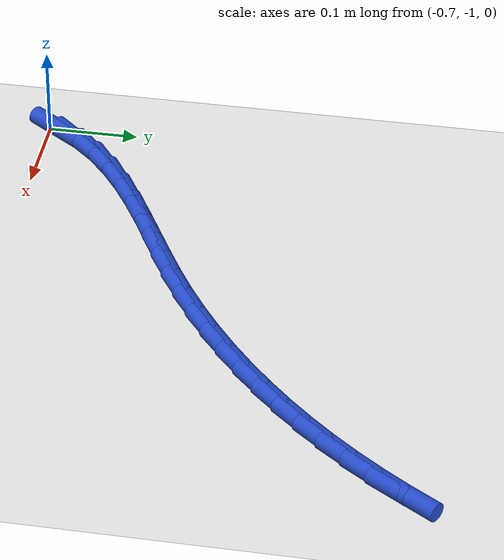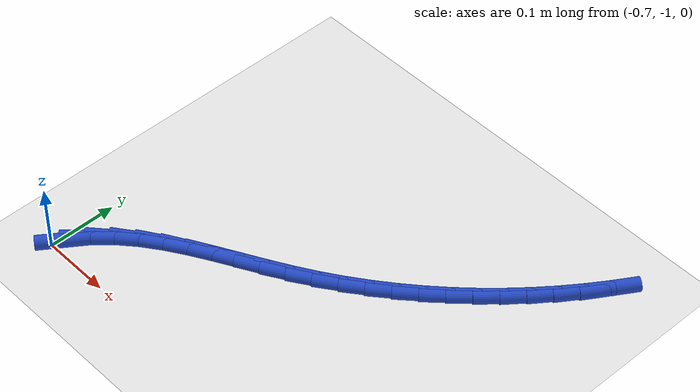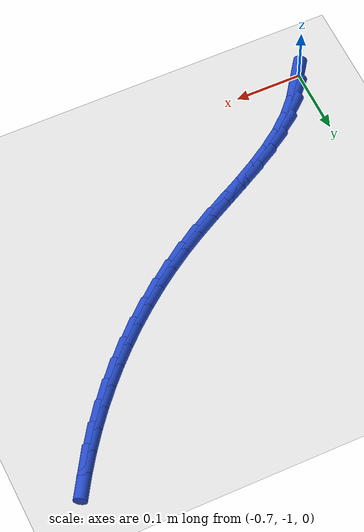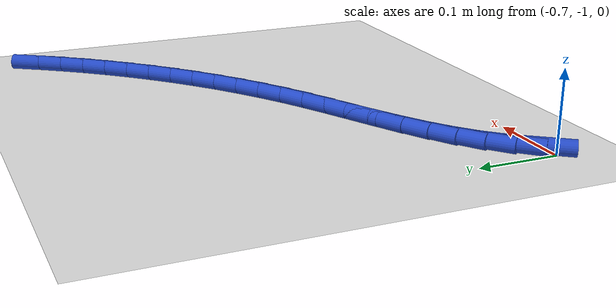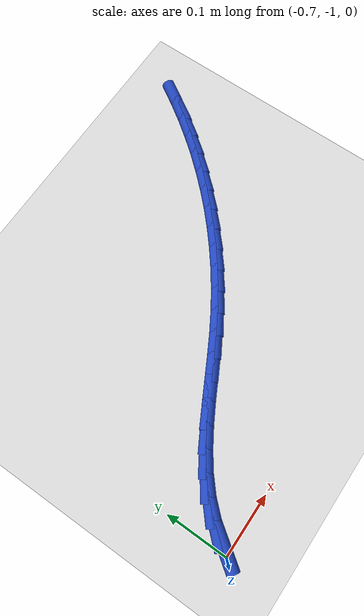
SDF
<sdf version="1.6">
 <world name="default">
  <model name="ground_plane">
   <static>1</static>
   <link name="link">
    <collision name="collision">
     <geometry><plane><normal>0 0 1</normal><size>100 100</size></plane></geometry>
     <surface><friction><ode><mu>100</mu><mu2>50</mu2></ode></friction></surface>
    </collision>
    <visual name="visual">
     <cast_shadows>0</cast_shadows>
     <geometry><plane><normal>0 0 1</normal><size>100 100</size></plane></geometry>
     <material>
      <script><uri>file://media/materials/scripts/gazebo.material</uri><name>Gazebo/WhiteGlow</name></script>
     </material>
    </visual>
   </link>
  </model>
  <model name="line">
   <link name="link_222">
    <pose>-0.6879303650324782 -0.9857824251509136 0.01 0 1.57 0.9573909140422552</pose>
    <collision name="collision">
     <geometry><cylinder><radius>0.01</radius><length>0.08</length></cylinder></geometry>
    </collision>
    <visual name="visual">
     <material>
      <script><name>Gazebo/Blue</name><uri>file://media/materials/scripts/gazebo.material</uri></script>
     </material>
     <geometry><cylinder><radius>0.01</radius><length>0.08</length></cylinder></geometry>
    </visual>
   </link>
   <link name="link_223">
    <pose>-0.6696332192423211 -0.9597921571791317 0.01 0 1.57 0.8304725613370099</pose>
    <collision name="collision">
     <geometry><cylinder><radius>0.01</radius><length>0.08</length></cylinder></geometry>
    </collision>
    <visual name="visual">
     <material>
      <script><name>Gazebo/Blue</name><uri>file://media/materials/scripts/gazebo.material</uri></script>
     </material>
     <geometry><cylinder><radius>0.01</radius><length>0.08</length></cylinder></geometry>
    </visual>
   </link>
   <link name="link_224">
    <pose>-0.6482848204216629 -0.9364269536180686 0.01 0 1.57 0.7160422685687982</pose>
    <collision name="collision">
     <geometry><cylinder><radius>0.01</radius><length>0.08</length></cylinder></geometry>
    </collision>
    <visual name="visual">
     <material>
      <script><name>Gazebo/Blue</name><uri>file://media/materials/scripts/gazebo.material</uri></script>
     </material>
     <geometry><cylinder><radius>0.01</radius><length>0.08</length></cylinder></geometry>
    </visual>
   </link>
   <link name="link_225">
    <pose>-0.6241377021921326 -0.9154167904943401 0.01 0 1.57 0.626199643183971</pose>
    <collision name="collision">
     <geometry><cylinder><radius>0.01</radius><length>0.08</length></cylinder></geometry>
    </collision>
    <visual name="visual">
     <material>
      <script><name>Gazebo/Blue</name><uri>file://media/materials/scripts/gazebo.material</uri></script>
     </material>
     <geometry><cylinder><radius>0.01</radius><length>0.08</length></cylinder></geometry>
    </visual>
   </link>
   <link name="link_226">
    <pose>-0.5976965563065402 -0.8962916418992725 0.01 0 1.57 0.5602816299888563</pose>
    <collision name="collision">
     <geometry><cylinder><radius>0.01</radius><length>0.08</length></cylinder></geometry>
    </collision>
    <visual name="visual">
     <material>
      <script><name>Gazebo/Blue</name><uri>file://media/materials/scripts/gazebo.material</uri></script>
     </material>
     <geometry><cylinder><radius>0.01</radius><length>0.08</length></cylinder></geometry>
    </visual>
   </link>
   <link name="link_227">
    <pose>-0.5694660780741989 -0.8785814791033124 0.01 0 1.57 0.5165735702658109</pose>
    <collision name="collision">
     <geometry><cylinder><radius>0.01</radius><length>0.08</length></cylinder></geometry>
    </collision>
    <visual name="visual">
     <material>
      <script><name>Gazebo/Blue</name><uri>file://media/materials/scripts/gazebo.material</uri></script>
     </material>
     <geometry><cylinder><radius>0.01</radius><length>0.08</length></cylinder></geometry>
    </visual>
   </link>
   <link name="link_228">
    <pose>-0.5399509628044226 -0.8618162733769067 0.01 0 1.57 0.49336682373808566</pose>
    <collision name="collision">
     <geometry><cylinder><radius>0.01</radius><length>0.08</length></cylinder></geometry>
    </collision>
    <visual name="visual">
     <material>
      <script><name>Gazebo/Blue</name><uri>file://media/materials/scripts/gazebo.material</uri></script>
     </material>
     <geometry><cylinder><radius>0.01</radius><length>0.08</length></cylinder></geometry>
    </visual>
   </link>
   <link name="link_229">
    <pose>-0.5096559058065238 -0.8455259959905017 0.01 0 1.57 0.4894788230374202</pose>
    <collision name="collision">
     <geometry><cylinder><radius>0.01</radius><length>0.08</length></cylinder></geometry>
    </collision>
    <visual name="visual">
     <material>
      <script><name>Gazebo/Blue</name><uri>file://media/materials/scripts/gazebo.material</uri></script>
     </material>
     <geometry><cylinder><radius>0.01</radius><length>0.08</length></cylinder></geometry>
    </visual>
   </link>
   <link name="link_230">
    <pose>-0.4790856023898175 -0.8292406182145442 0.01 0 1.57 0.5044369166634568</pose>
    <collision name="collision">
     <geometry><cylinder><radius>0.01</radius><length>0.08</length></cylinder></geometry>
    </collision>
    <visual name="visual">
     <material>
      <script><name>Gazebo/Blue</name><uri>file://media/materials/scripts/gazebo.material</uri></script>
     </material>
     <geometry><cylinder><radius>0.01</radius><length>0.08</length></cylinder></geometry>
    </visual>
   </link>
   <link name="link_231">
    <pose>-0.44874474786361696 -0.8124901113194815 0.01 0 1.57 0.5377396542753624</pose>
    <collision name="collision">
     <geometry><cylinder><radius>0.01</radius><length>0.08</length></cylinder></geometry>
    </collision>
    <visual name="visual">
     <material>
      <script><name>Gazebo/Blue</name><uri>file://media/materials/scripts/gazebo.material</uri></script>
     </material>
     <geometry><cylinder><radius>0.01</radius><length>0.08</length></cylinder></geometry>
    </visual>
   </link>
   <link name="link_232">
    <pose>-0.41911993549596804 -0.7948230211402446 0.01 0 1.57 0.579102996664519</pose>
    <collision name="collision">
     <geometry><cylinder><radius>0.01</radius><length>0.08</length></cylinder></geometry>
    </collision>
    <visual name="visual">
     <material>
      <script><name>Gazebo/Blue</name><uri>file://media/materials/scripts/gazebo.material</uri></script>
     </material>
     <geometry><cylinder><radius>0.01</radius><length>0.08</length></cylinder></geometry>
    </visual>
   </link>
   <link name="link_233">
    <pose>-0.39042976240748434 -0.776062885246047 0.01 0 1.57 0.6203422519799144</pose>
    <collision name="collision">
     <geometry><cylinder><radius>0.01</radius><length>0.08</length></cylinder></geometry>
    </collision>
    <visual name="visual">
     <material>
      <script><name>Gazebo/Blue</name><uri>file://media/materials/scripts/gazebo.material</uri></script>
     </material>
     <geometry><cylinder><radius>0.01</radius><length>0.08</length></cylinder></geometry>
    </visual>
   </link>
   <link name="link_234">
    <pose>-0.3626879768123114 -0.7562434373473347 0.01 0 1.57 0.6612072535781577</pose>
    <collision name="collision">
     <geometry><cylinder><radius>0.01</radius><length>0.08</length></cylinder></geometry>
    </collision>
    <visual name="visual">
     <material>
      <script><name>Gazebo/Blue</name><uri>file://media/materials/scripts/gazebo.material</uri></script>
     </material>
     <geometry><cylinder><radius>0.01</radius><length>0.08</length></cylinder></geometry>
    </visual>
   </link>
   <link name="link_235">
    <pose>-0.3359031408635536 -0.7354037325889604 0.01 0 1.57 0.7016649693965947</pose>
    <collision name="collision">
     <geometry><cylinder><radius>0.01</radius><length>0.08</length></cylinder></geometry>
    </collision>
    <visual name="visual">
     <material>
      <script><name>Gazebo/Blue</name><uri>file://media/materials/scripts/gazebo.material</uri></script>
     </material>
     <geometry><cylinder><radius>0.01</radius><length>0.08</length></cylinder></geometry>
    </visual>
   </link>
   <link name="link_236">
    <pose>-0.3100838167143142 -0.7135828261157763 0.01 0 1.57 0.7416900096103572</pose>
    <collision name="collision">
     <geometry><cylinder><radius>0.01</radius><length>0.08</length></cylinder></geometry>
    </collision>
    <visual name="visual">
     <material>
      <script><name>Gazebo/Blue</name><uri>file://media/materials/scripts/gazebo.material</uri></script>
     </material>
     <geometry><cylinder><radius>0.01</radius><length>0.08</length></cylinder></geometry>
    </visual>
   </link>
   <link name="link_237">
    <pose>-0.2852385665176988 -0.6908197730726364 0.01 0 1.57 0.7812644870811348</pose>
    <collision name="collision">
     <geometry><cylinder><radius>0.01</radius><length>0.08</length></cylinder></geometry>
    </collision>
    <visual name="visual">
     <material>
      <script><name>Gazebo/Blue</name><uri>file://media/materials/scripts/gazebo.material</uri></script>
     </material>
     <geometry><cylinder><radius>0.01</radius><length>0.08</length></cylinder></geometry>
    </visual>
   </link>
   <link name="link_238">
    <pose>-0.26137595242681083 -0.6671536286043932 0.01 0 1.57 0.8203777514630833</pose>
    <collision name="collision">
     <geometry><cylinder><radius>0.01</radius><length>0.08</length></cylinder></geometry>
    </collision>
    <visual name="visual">
     <material>
      <script><name>Gazebo/Blue</name><uri>file://media/materials/scripts/gazebo.material</uri></script>
     </material>
     <geometry><cylinder><radius>0.01</radius><length>0.08</length></cylinder></geometry>
    </visual>
   </link>
   <link name="link_239">
    <pose>-0.2385045365947544 -0.6426234478558991 0.01 0 1.57 0.8590260218579789</pose>
    <collision name="collision">
     <geometry><cylinder><radius>0.01</radius><length>0.08</length></cylinder></geometry>
    </collision>
    <visual name="visual">
     <material>
      <script><name>Gazebo/Blue</name><uri>file://media/materials/scripts/gazebo.material</uri></script>
     </material>
     <geometry><cylinder><radius>0.01</radius><length>0.08</length></cylinder></geometry>
    </visual>
   </link>
   <link name="link_240">
    <pose>-0.21663288117463372 -0.6172682859720071 0.01 0 1.57 0.8972119429088313</pose>
    <collision name="collision">
     <geometry><cylinder><radius>0.01</radius><length>0.08</length></cylinder></geometry>
    </collision>
    <visual name="visual">
     <material>
      <script><name>Gazebo/Blue</name><uri>file://media/materials/scripts/gazebo.material</uri></script>
     </material>
     <geometry><cylinder><radius>0.01</radius><length>0.08</length></cylinder></geometry>
    </visual>
   </link>
   <link name="link_241">
    <pose>-0.19576954831955287 -0.5911271980975701 0.01 0 1.57 0.9349440878768114</pose>
    <collision name="collision">
     <geometry><cylinder><radius>0.01</radius><length>0.08</length></cylinder></geometry>
    </collision>
    <visual name="visual">
     <material>
      <script><name>Gazebo/Blue</name><uri>file://media/materials/scripts/gazebo.material</uri></script>
     </material>
     <geometry><cylinder><radius>0.01</radius><length>0.08</length></cylinder></geometry>
    </visual>
   </link>
   <link name="link_242">
    <pose>-0.17592310018261592 -0.5642392393774407 0.01 0 1.57 0.9722364299210523</pose>
    <collision name="collision">
     <geometry><cylinder><radius>0.01</radius><length>0.08</length></cylinder></geometry>
    </collision>
    <visual name="visual">
     <material>
      <script><name>Gazebo/Blue</name><uri>file://media/materials/scripts/gazebo.material</uri></script>
     </material>
     <geometry><cylinder><radius>0.01</radius><length>0.08</length></cylinder></geometry>
    </visual>
   </link>
   <link name="link_243">
    <pose>-0.1571020989169271 -0.536643464956472 0.01 0 1.57 1.0091077998464764</pose>
    <collision name="collision">
     <geometry><cylinder><radius>0.01</radius><length>0.08</length></cylinder></geometry>
    </collision>
    <visual name="visual">
     <material>
      <script><name>Gazebo/Blue</name><uri>file://media/materials/scripts/gazebo.material</uri></script>
     </material>
     <geometry><cylinder><radius>0.01</radius><length>0.08</length></cylinder></geometry>
    </visual>
   </link>
  </model>
 </world>
</sdf>
